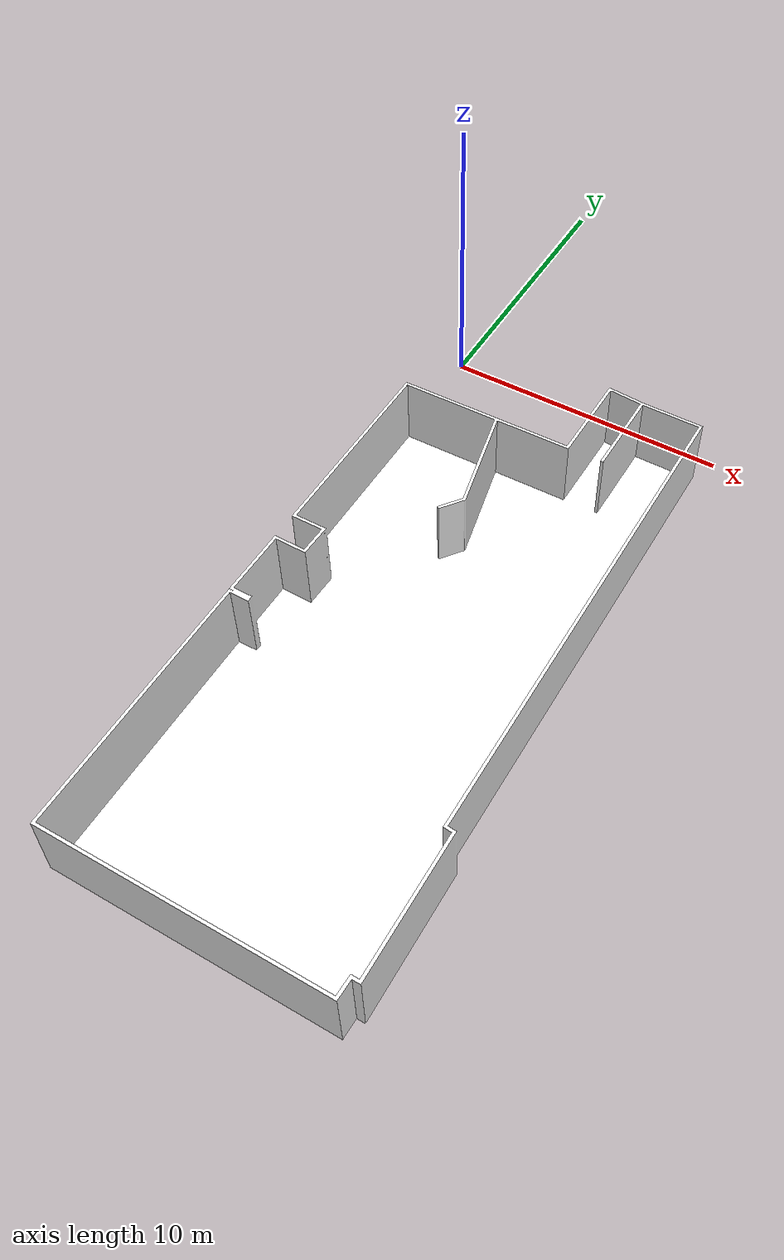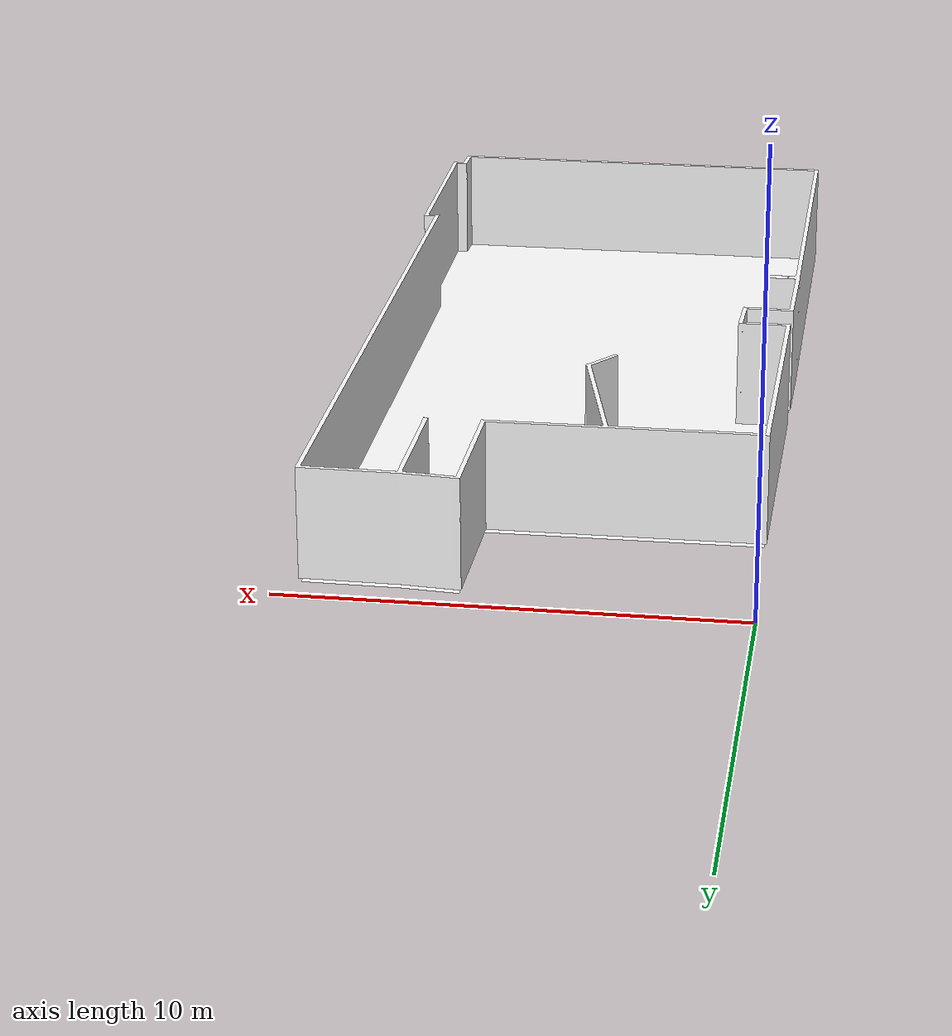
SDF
<sdf version="1.7">
  <world name="sim_world">
    <physics name="10ms" type="ode">
      <max_step_size>0.01</max_step_size>
      <real_time_factor>1.0</real_time_factor>
    </physics>
    <plugin filename="libgz-sim-physics-system.so" name="gz::sim::systems::Physics">
    </plugin>
    <plugin filename="libgz-sim-user-commands-system.so" name="gz::sim::systems::UserCommands">
    </plugin>
    <plugin filename="libgz-sim-scene-broadcaster-system.so" name="gz::sim::systems::SceneBroadcaster">
    </plugin>
    <plugin filename="libdoor.so" name="door">
    </plugin>
    <plugin filename="libgz-sim-lift-system.so" name="gz::sim::systems::Lift">
    </plugin>
    <plugin filename="libgz-sim-sensors-system.so" name="gz::sim::systems::Sensors">
      <render_engine>ogre2</render_engine>
    </plugin>
    <scene>
      <ambient>1 1 1</ambient>
      <background>0.8 0.8 0.8</background>
      <grid>false</grid>
    </scene>
    <gui fullscreen="0">
      <window>
        <width>1000</width>
        <height>845</height>
        <style material_theme="Light" material_primary="DeepOrange" material_accent="LightBlue" toolbar_color_light="#f3f3f3" toolbar_text_color_light="#111111" toolbar_color_dark="#414141" toolbar_text_color_dark="#f3f3f3" plugin_toolbar_color_light="#bbdefb" plugin_toolbar_text_color_light="#111111" plugin_toolbar_color_dark="#607d8b" plugin_toolbar_text_color_dark="#eeeeee" />
        <menus>
          <drawer default="false">
          </drawer>
        </menus>
      </window>
      <plugin filename="MinimalScene" name="3D View">
        <gz-gui>
          <title>3D View</title>
          <property type="bool" key="showTitleBar">false</property>
          <property type="string" key="state">docked</property>
        </gz-gui>
        <engine>ogre2</engine>
        <scene>scene</scene>
        <ambient_light>0.4 0.4 0.4</ambient_light>
        <background_color>0.8 0.8 0.8</background_color>
        <camera_pose>4.943642740225935 -31.88485057810645 10 0 0.6 1.57</camera_pose>
      </plugin>
      <plugin filename="EntityContextMenuPlugin" name="Entity context menu">
        <gz-gui>
          <property key="state" type="string">floating</property>
          <property key="width" type="double">5</property>
          <property key="height" type="double">5</property>
          <property key="showTitleBar" type="bool">false</property>
        </gz-gui>
      </plugin>
      <plugin filename="GzSceneManager" name="Scene Manager">
        <gz-gui>
          <property key="resizable" type="bool">false</property>
          <property key="width" type="double">5</property>
          <property key="height" type="double">5</property>
          <property key="state" type="string">floating</property>
          <property key="showTitleBar" type="bool">false</property>
        </gz-gui>
      </plugin>
      <plugin filename="InteractiveViewControl" name="Interactive view control">
        <gz-gui>
          <property key="resizable" type="bool">false</property>
          <property key="width" type="double">5</property>
          <property key="height" type="double">5</property>
          <property key="state" type="string">floating</property>
          <property key="showTitleBar" type="bool">false</property>
        </gz-gui>
      </plugin>
      <plugin filename="CameraTracking" name="Camera Tracking">
        <gz-gui>
          <property key="resizable" type="bool">false</property>
          <property key="width" type="double">5</property>
          <property key="height" type="double">5</property>
          <property key="state" type="string">floating</property>
          <property key="showTitleBar" type="bool">false</property>
        </gz-gui>
      </plugin>
      <plugin filename="MarkerManager" name="Marker manager">
        <gz-gui>
          <property key="resizable" type="bool">false</property>
          <property key="width" type="double">5</property>
          <property key="height" type="double">5</property>
          <property key="state" type="string">floating</property>
          <property key="showTitleBar" type="bool">false</property>
        </gz-gui>
      </plugin>
      <plugin filename="SelectEntities" name="Select Entities">
        <gz-gui>
          <property key="resizable" type="bool">false</property>
          <property key="width" type="double">5</property>
          <property key="height" type="double">5</property>
          <property key="state" type="string">floating</property>
          <property key="showTitleBar" type="bool">false</property>
        </gz-gui>
      </plugin>
      <plugin filename="Spawn" name="Spawn Entities">
        <gz-gui>
          <property key="resizable" type="bool">false</property>
          <property key="width" type="double">5</property>
          <property key="height" type="double">5</property>
          <property key="state" type="string">floating</property>
          <property key="showTitleBar" type="bool">false</property>
        </gz-gui>
      </plugin>
      <plugin filename="VisualizationCapabilities" name="Visualization Capabilities">
        <gz-gui>
          <property key="resizable" type="bool">false</property>
          <property key="width" type="double">5</property>
          <property key="height" type="double">5</property>
          <property key="state" type="string">floating</property>
          <property key="showTitleBar" type="bool">false</property>
        </gz-gui>
      </plugin>
      <plugin filename="WorldControl" name="World control">
        <gz-gui>
          <title>World control</title>
          <property type="bool" key="showTitleBar">false</property>
          <property type="bool" key="resizable">false</property>
          <property type="double" key="height">72</property>
          <property type="double" key="z">1</property>
          <property type="string" key="state">floating</property>
          <anchors target="3D View">
            <line own="left" target="left" />
            <line own="bottom" target="bottom" />
          </anchors>
        </gz-gui>
        <play_pause>true</play_pause>
        <step>true</step>
        <start_paused>true</start_paused>
        <use_event>true</use_event>
      </plugin>
      <plugin filename="WorldStats" name="World stats">
        <gz-gui>
          <title>World stats</title>
          <property type="bool" key="showTitleBar">false</property>
          <property type="bool" key="resizable">false</property>
          <property type="double" key="height">110</property>
          <property type="double" key="width">290</property>
          <property type="double" key="z">1</property>
          <property type="string" key="state">floating</property>
          <anchors target="3D View">
            <line own="right" target="right" />
            <line own="bottom" target="bottom" />
          </anchors>
        </gz-gui>
        <sim_time>true</sim_time>
        <real_time>true</real_time>
        <real_time_factor>true</real_time_factor>
        <iterations>true</iterations>
      </plugin>
      <plugin filename="Shapes" name="Shapes">
        <gz-gui>
          <property key="resizable" type="bool">false</property>
          <property key="x" type="double">0</property>
          <property key="y" type="double">0</property>
          <property key="width" type="double">250</property>
          <property key="height" type="double">50</property>
          <property key="state" type="string">floating</property>
          <property key="showTitleBar" type="bool">false</property>
          <property key="cardBackground" type="string">#666666</property>
        </gz-gui>
      </plugin>
      <plugin filename="Lights" name="Lights">
        <gz-gui>
          <property key="resizable" type="bool">false</property>
          <property key="x" type="double">250</property>
          <property key="y" type="double">0</property>
          <property key="width" type="double">150</property>
          <property key="height" type="double">50</property>
          <property key="state" type="string">floating</property>
          <property key="showTitleBar" type="bool">false</property>
          <property key="cardBackground" type="string">#666666</property>
        </gz-gui>
      </plugin>
      <plugin filename="TransformControl" name="Transform control">
        <gz-gui>
          <property key="resizable" type="bool">false</property>
          <property key="x" type="double">0</property>
          <property key="y" type="double">50</property>
          <property key="width" type="double">250</property>
          <property key="height" type="double">50</property>
          <property key="state" type="string">floating</property>
          <property key="showTitleBar" type="bool">false</property>
          <property key="cardBackground" type="string">#777777</property>
        </gz-gui>
      </plugin>
      <plugin filename="Screenshot" name="Screenshot">
        <gz-gui>
          <property key="resizable" type="bool">false</property>
          <property key="x" type="double">250</property>
          <property key="y" type="double">50</property>
          <property key="width" type="double">50</property>
          <property key="height" type="double">50</property>
          <property key="state" type="string">floating</property>
          <property key="showTitleBar" type="bool">false</property>
          <property key="cardBackground" type="string">#777777</property>
        </gz-gui>
      </plugin>
      <plugin filename="CopyPaste" name="CopyPaste">
        <gz-gui>
          <property key="resizable" type="bool">false</property>
          <property key="x" type="double">300</property>
          <property key="y" type="double">50</property>
          <property key="width" type="double">100</property>
          <property key="height" type="double">50</property>
          <property key="state" type="string">floating</property>
          <property key="showTitleBar" type="bool">false</property>
          <property key="cardBackground" type="string">#777777</property>
        </gz-gui>
      </plugin>
      <plugin filename="ComponentInspector" name="Component inspector">
        <gz-gui>
          <property type="bool" key="showTitleBar">false</property>
          <property type="string" key="state">docked</property>
        </gz-gui>
      </plugin>
      <plugin filename="EntityTree" name="Entity tree">
        <gz-gui>
          <property type="bool" key="showTitleBar">false</property>
          <property type="string" key="state">docked</property>
        </gz-gui>
      </plugin>
      <plugin filename="toggle_charging" name="toggle_charging" />
      <plugin name="toggle_floors" filename="toggle_floors">
        <floor name="L1" model_name="new_env_L1" />
      </plugin>
    </gui>
    <light type="directional" name="sun">
      <cast_shadows>true</cast_shadows>
      <pose>0 0 10 0 0 0</pose>
      <diffuse>1 1 1 1</diffuse>
      <specular>0.2 0.2 0.2 1</specular>
      <attenuation>
        <range>1000</range>
        <constant>0.09</constant>
        <linear>0.001</linear>
        <quadratic>0.001</quadratic>
      </attenuation>
      <direction>-0.5 0.1 -0.9</direction>
    </light>
    <include>
      <name>new_env_L1</name>
      <uri>model://new_env_L1</uri>
      <pose>0 0 0.0 0 0 0</pose>
    </include>
    <rmf_charger_waypoints name="charger_waypoints">
      <rmf_vertex name="A1" x="1.48" y="-9.51" level="L1" />
      <rmf_vertex name="A2" x="1.48" y="-15.95" level="L1" />
      <rmf_vertex name="D1" x="4.7" y="-5.55" level="L1" />
      <rmf_vertex name="B1" x="7.89" y="-9.51" level="L1" />
      <rmf_vertex name="B2" x="7.89" y="-15.95" level="L1" />
      <rmf_vertex name="C1" x="6.4" y="-5.55" level="L1" />
      <rmf_vertex name="C2" x="6.4" y="-19.4" level="L1" />
    </rmf_charger_waypoints>
  </world>
</sdf>

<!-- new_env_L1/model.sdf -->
<sdf version="1.7">
  <model name="new_env_L1">
    <static>true</static>
    <link name="floor_1">
      <visual name="visual">
        <geometry>
          <mesh>
            <uri>model://new_env_L1/meshes/floor_1.obj</uri>
          </mesh>
        </geometry>
        <material>
          <diffuse>1.0 1.0 1.0</diffuse>
          <specular>0.1 0.1 0.1</specular>
          <pbr>
            <metal>
              <metalness>0.0</metalness>
              <albedo_map>model://new_env_L1/meshes/blue_linoleum.png</albedo_map>
            </metal>
          </pbr>
          <script>
            <uri>model://new_env_L1/meshes/</uri>
            <name>floor_1_Diffuse</name>
          </script>
        </material>
      </visual>
      <collision name="collision">
        <geometry>
          <mesh>
            <uri>model://new_env_L1/meshes/floor_1.obj</uri>
          </mesh>
        </geometry>
        <surface>
          <contact>
            <collide_bitmask>0x01</collide_bitmask>
          </contact>
        </surface>
      </collision>
    </link>
    <link name="wall_1">
      <visual name="wall_1">
        <geometry>
          <mesh>
            <uri>model://new_env_L1/meshes/wall_1.obj</uri>
          </mesh>
        </geometry>
        <transparency>0.0</transparency>
        <material>
          <diffuse>1.0 1.0 1.0</diffuse>
          <specular>0.1 0.1 0.1</specular>
          <pbr>
            <metal>
              <metalness>0.0</metalness>
              <albedo_map>model://new_env_L1/meshes/default.png</albedo_map>
            </metal>
          </pbr>
          <script>
            <uri>model://new_env_L1/meshes/</uri>
            <name>wall_1_Diffuse</name>
          </script>
        </material>
      </visual>
      <collision name="collision">
        <geometry>
          <mesh>
            <uri>model://new_env_L1/meshes/wall_1.obj</uri>
          </mesh>
        </geometry>
        <surface>
          <contact>
            <collide_bitmask>0x01</collide_bitmask>
          </contact>
        </surface>
      </collision>
      <pose>0.017277761387815317 -23.03991932704211 0 0 0 0</pose>
    </link>
  </model>
</sdf>
